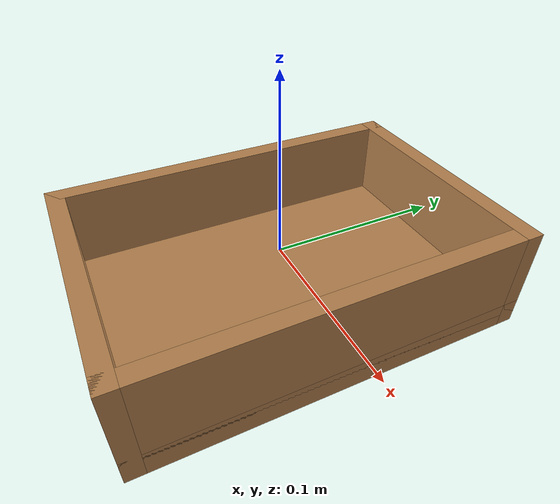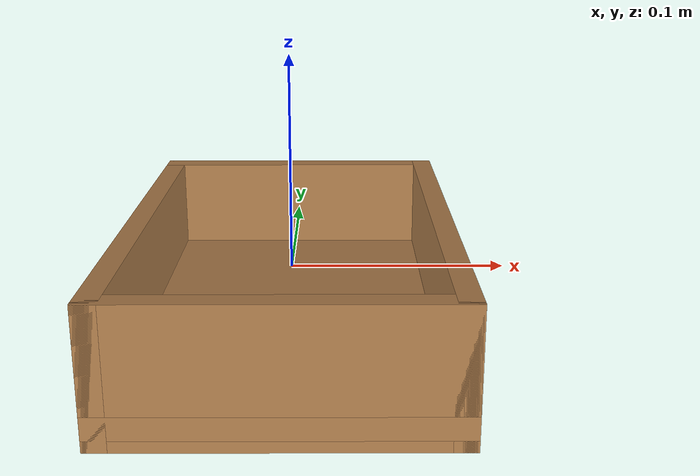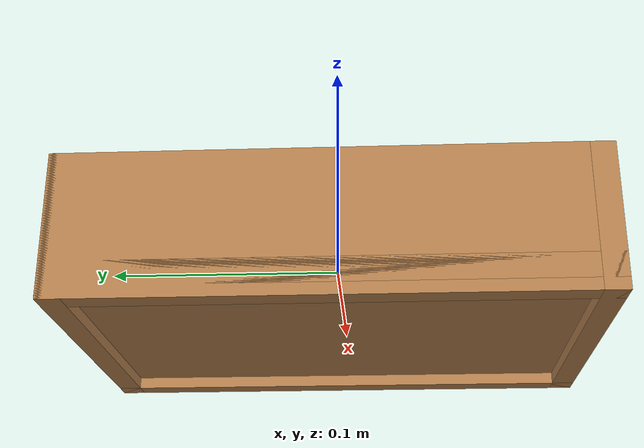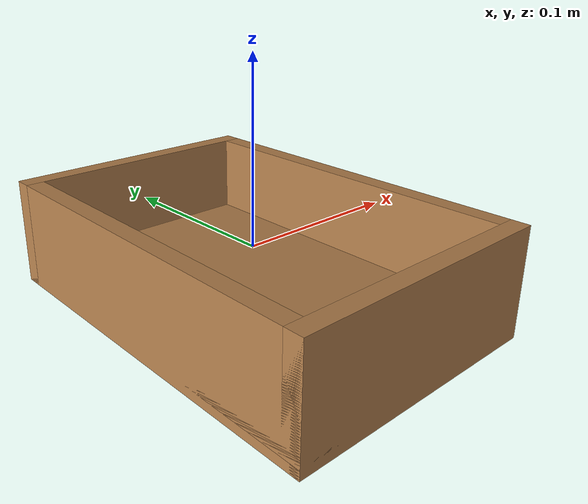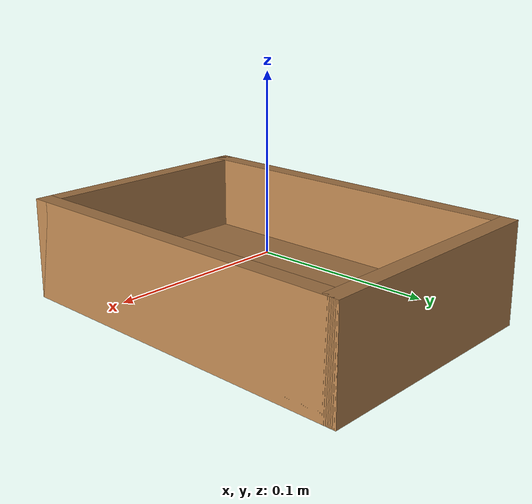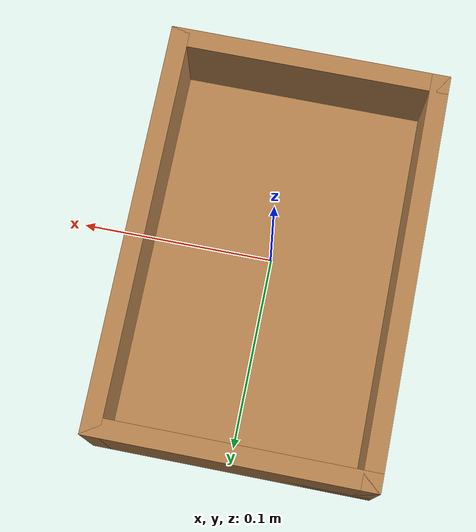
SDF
<?xml version="1.0" ?>
<sdf version='1.4'>
<model name='pieces_box'>
      <static>1</static>
      <link name='link'>
        <collision name='base'>
          <pose>0.000000 0.000000 -0.0250000 0.000000 0.000000 0.000000</pose>
          <geometry>
            <box>
              <size>0.150000 0.220000 0.010000</size>
            </box>
          </geometry>
          <surface>
            <bounce/>
            <friction>
              <ode/>
            </friction>
            <contact>
              <ode/>
            </contact>
          </surface>
        </collision>
        <visual name='base'>
          <pose>0.000000 0.000000 -0.0250000 0.000000 0.000000 0.000000</pose>
          <geometry>
            <box>
              <size>0.150000 0.220000 0.010000</size>
            </box>
          </geometry>
          <material>
            <script>
              <uri>file://media/materials/scripts/gazebo.material</uri>
              <name>Gazebo/Wood</name>
            </script>
          </material>
        </visual>
        <collision name='wall1'>
          <pose>0.000000 -0.105000 -0.005000 0.000000 0.000000 0.000000</pose>
          <geometry>
            <box>
              <size>0.150000 0.010000 0.060000</size>
            </box>
          </geometry>
          <surface>
            <bounce/>
            <friction>
              <ode/>
            </friction>
            <contact>
              <ode/>
            </contact>
          </surface>
        </collision>
        <visual name='wall1'>
          <pose>0.000000 -0.105000 -0.005000 0.000000 0.000000 0.000000</pose>
          <geometry>
            <box>
              <size>0.150000 0.010000 0.060000</size>
            </box>
          </geometry>
          <material>
            <script>
              <uri>file://media/materials/scripts/gazebo.material</uri>
              <name>Gazebo/Wood</name>
            </script>
          </material>
        </visual>
        <collision name='wall2'>
          <pose>0.000000 0.105000 -0.005000 0.000000 0.000000 0.000000</pose>
          <geometry>
            <box>
              <size>0.150000 0.010000 0.060000</size>
            </box>
          </geometry>
          <surface>
            <bounce/>
            <friction>
              <ode/>
            </friction>
            <contact>
              <ode/>
            </contact>
          </surface>
        </collision>
        <visual name='wall2'>
          <pose>0.000000 0.105000 -0.005000 0.000000 0.000000 0.000000</pose>
          <geometry>
            <box>
              <size>0.150000 0.010000 0.060000</size>
            </box>
          </geometry>
          <material>
            <script>
              <uri>file://media/materials/scripts/gazebo.material</uri>
              <name>Gazebo/Wood</name>
            </script>
          </material>
        </visual>
        <collision name='wall3'>
          <pose>-0.070000 0.000000 -0.005000 0.000000 0.000000 0.000000</pose>
          <geometry>
            <box>
              <size>0.010000 0.220000 0.060000</size>
            </box>
          </geometry>
          <surface>
            <bounce/>
            <friction>
              <ode/>
            </friction>
            <contact>
              <ode/>
            </contact>
          </surface>
        </collision>
        <visual name='wall3'>
          <pose>-0.070000 0.000000 -0.005000 0.000000 0.000000 0.000000</pose>
          <geometry>
            <box>
              <size>0.010000 0.220000 0.060000</size>
            </box>
          </geometry>
          <material>
            <script>
              <uri>file://media/materials/scripts/gazebo.material</uri>
              <name>Gazebo/Wood</name>
            </script>
          </material>
        </visual>
        <collision name='wall4'>
          <pose>0.070000 0.000000 -0.005000 0.000000 0.000000 0.000000</pose>
          <geometry>
            <box>
              <size>0.010000 0.220000 0.060000</size>
            </box>
          </geometry>
          <surface>
            <bounce/>
            <friction>
              <ode/>
            </friction>
            <contact>
              <ode/>
            </contact>
          </surface>
        </collision>
        <visual name='wall4'>
          <pose>0.070000 0.000000 -0.005000 0.000000 0.000000 0.000000</pose>
          <geometry>
            <box>
              <size>0.010000 0.220000 0.060000</size>
            </box>
          </geometry>
          <material>
            <script>
              <uri>file://media/materials/scripts/gazebo.material</uri>
              <name>Gazebo/Wood</name>
            </script>
          </material>
        </visual>
        <velocity_decay>
          <linear>0.000000</linear>
          <angular>0.000000</angular>
        </velocity_decay>
        <self_collide>0</self_collide>
        <kinematic>0</kinematic>
        <gravity>1</gravity>
      </link>
    </model>
</sdf>
